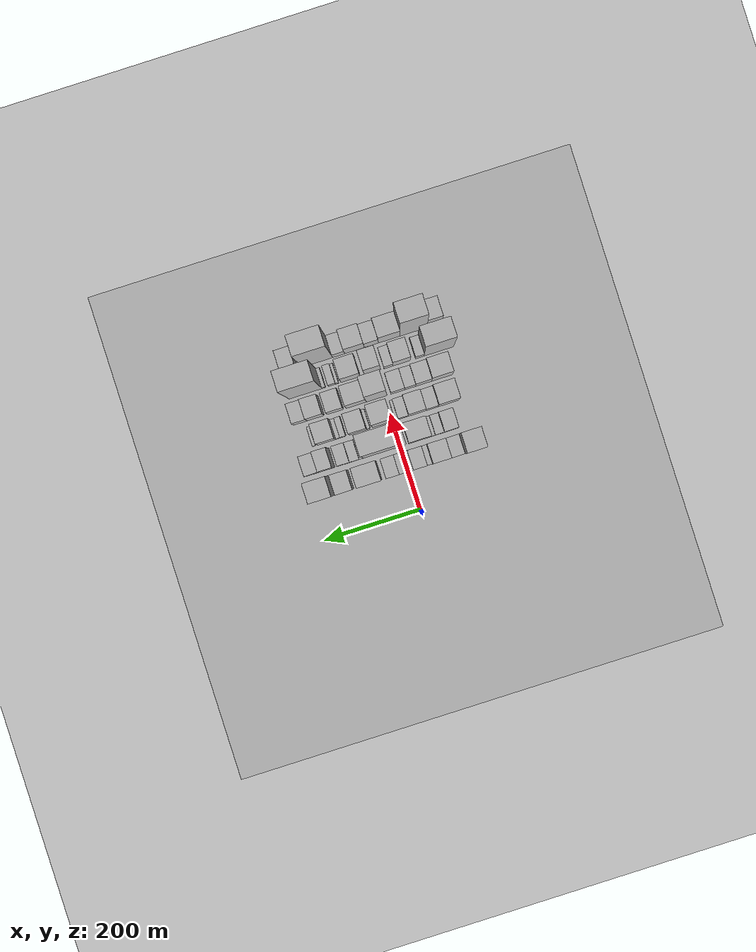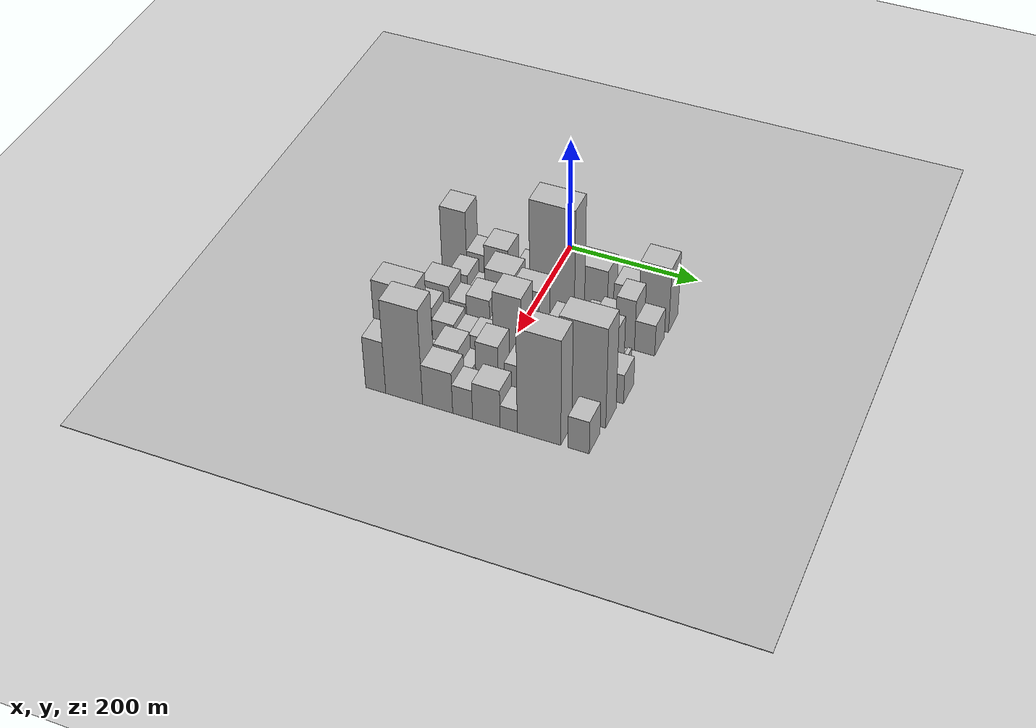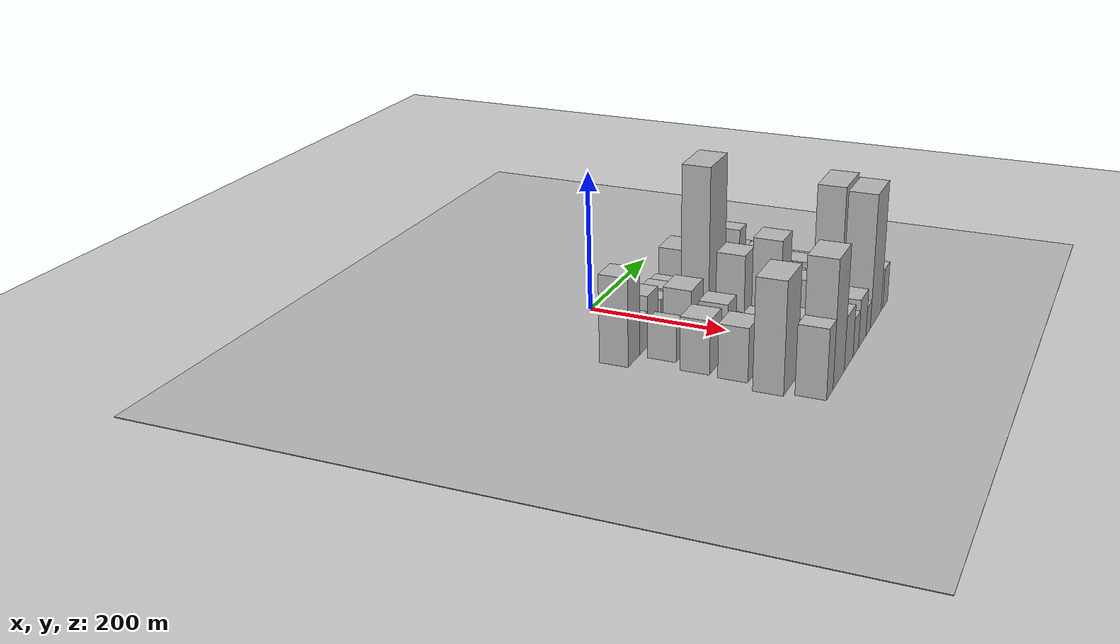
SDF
<sdf version="1.6">
 <world name="default">
  <include><name>ground_plane_1</name><uri>model://HANNAS_ground_plane</uri></include>
  <include>
   <name>ground_plane_2</name>
   <uri>model://HANNAS_ground_plane</uri>
   <pose>100 0 0  0 0 0</pose>
  </include>
  <model name="building_21">
   <static>1</static>
   <pose>100.0000 -134.0736 0 0.000000 0.000000 0.000000</pose>
   <link name="link">
    <pose>0 0 61.50 0 0 0</pose>
    <collision name="collision"><geometry><box><size>40.0000 39.9015 123.0000</size></box></geometry></collision>
    <visual name="visual">
     <cast_shadows>0</cast_shadows>
     <geometry><box><size>40.0000 39.9015 123.0000</size></box></geometry>
     <material>
      <script>
       <uri>model://HANNAS_wall/materials/scripts</uri>
       <uri>model://HANNAS_wall/materials/textures</uri>
       <name>vrc/HANNAS_wall</name>
      </script>
     </material>
    </visual>
   </link>
  </model>
  <model name="building_22">
   <static>1</static>
   <pose>100.0000 -100.3217 0 0.000000 0.000000 0.000000</pose>
   <link name="link">
    <pose>0 0 25.50 0 0 0</pose>
    <collision name="collision"><geometry><box><size>40.0000 27.6023 51.0000</size></box></geometry></collision>
    <visual name="visual">
     <cast_shadows>0</cast_shadows>
     <geometry><box><size>40.0000 27.6023 51.0000</size></box></geometry>
     <material>
      <script>
       <uri>model://HANNAS_wall/materials/scripts</uri>
       <uri>model://HANNAS_wall/materials/textures</uri>
       <name>vrc/HANNAS_wall</name>
      </script>
     </material>
    </visual>
   </link>
  </model>
  <model name="building_23">
   <static>1</static>
   <pose>100.0000 -67.7895 0 0.000000 0.000000 0.000000</pose>
   <link name="link">
    <pose>0 0 36.00 0 0 0</pose>
    <collision name="collision"><geometry><box><size>40.0000 37.4621 72.0000</size></box></geometry></collision>
    <visual name="visual">
     <cast_shadows>0</cast_shadows>
     <geometry><box><size>40.0000 37.4621 72.0000</size></box></geometry>
     <material>
      <script>
       <uri>model://HANNAS_wall/materials/scripts</uri>
       <uri>model://HANNAS_wall/materials/textures</uri>
       <name>vrc/HANNAS_wall</name>
      </script>
     </material>
    </visual>
   </link>
  </model>
  <model name="building_24">
   <static>1</static>
   <pose>100.0000 -43.5704 0 0.000000 0.000000 0.000000</pose>
   <link name="link">
    <pose>0 0 12.00 0 0 0</pose>
    <collision name="collision"><geometry><box><size>40.0000 10.9760 24.0000</size></box></geometry></collision>
    <visual name="visual">
     <cast_shadows>0</cast_shadows>
     <geometry><box><size>40.0000 10.9760 24.0000</size></box></geometry>
     <material>
      <script>
       <uri>model://HANNAS_wall/materials/scripts</uri>
       <uri>model://HANNAS_wall/materials/textures</uri>
       <name>vrc/HANNAS_wall</name>
      </script>
     </material>
    </visual>
   </link>
  </model>
  <model name="building_25">
   <static>1</static>
   <pose>100.0000 -23.7559 0 0.000000 0.000000 0.000000</pose>
   <link name="link">
    <pose>0 0 24.00 0 0 0</pose>
    <collision name="collision"><geometry><box><size>40.0000 28.6529 48.0000</size></box></geometry></collision>
    <visual name="visual">
     <cast_shadows>0</cast_shadows>
     <geometry><box><size>40.0000 28.6529 48.0000</size></box></geometry>
     <material>
      <script>
       <uri>model://HANNAS_wall/materials/scripts</uri>
       <uri>model://HANNAS_wall/materials/textures</uri>
       <name>vrc/HANNAS_wall</name>
      </script>
     </material>
    </visual>
   </link>
  </model>
  <model name="building_26">
   <static>1</static>
   <pose>100.0000 4.6987 0 0.000000 0.000000 0.000000</pose>
   <link name="link">
    <pose>0 0 25.50 0 0 0</pose>
    <collision name="collision"><geometry><box><size>40.0000 28.2563 51.0000</size></box></geometry></collision>
    <visual name="visual">
     <cast_shadows>0</cast_shadows>
     <geometry><box><size>40.0000 28.2563 51.0000</size></box></geometry>
     <material>
      <script>
       <uri>model://HANNAS_wall/materials/scripts</uri>
       <uri>model://HANNAS_wall/materials/textures</uri>
       <name>vrc/HANNAS_wall</name>
      </script>
     </material>
    </visual>
   </link>
  </model>
  <model name="building_27">
   <static>1</static>
   <pose>100.0000 32.3830 0 0.000000 0.000000 0.000000</pose>
   <link name="link">
    <pose>0 0 24.00 0 0 0</pose>
    <collision name="collision"><geometry><box><size>40.0000 27.1123 48.0000</size></box></geometry></collision>
    <visual name="visual">
     <cast_shadows>0</cast_shadows>
     <geometry><box><size>40.0000 27.1123 48.0000</size></box></geometry>
     <material>
      <script>
       <uri>model://HANNAS_wall/materials/scripts</uri>
       <uri>model://HANNAS_wall/materials/textures</uri>
       <name>vrc/HANNAS_wall</name>
      </script>
     </material>
    </visual>
   </link>
  </model>
  <model name="building_28">
   <static>1</static>
   <pose>100.0000 79.7032 0 0.000000 0.000000 0.000000</pose>
   <link name="link">
    <pose>0 0 42.00 0 0 0</pose>
    <collision name="collision"><geometry><box><size>40.0000 49.5280 84.0000</size></box></geometry></collision>
    <visual name="visual">
     <cast_shadows>0</cast_shadows>
     <geometry><box><size>40.0000 49.5280 84.0000</size></box></geometry>
     <material>
      <script>
       <uri>model://HANNAS_wall/materials/scripts</uri>
       <uri>model://HANNAS_wall/materials/textures</uri>
       <name>vrc/HANNAS_wall</name>
      </script>
     </material>
    </visual>
   </link>
  </model>
  <model name="building_29">
   <static>1</static>
   <pose>100.0000 131.0560 0 0.000000 0.000000 0.000000</pose>
   <link name="link">
    <pose>0 0 33.00 0 0 0</pose>
    <collision name="collision"><geometry><box><size>40.0000 35.1776 66.0000</size></box></geometry></collision>
    <visual name="visual">
     <cast_shadows>0</cast_shadows>
     <geometry><box><size>40.0000 35.1776 66.0000</size></box></geometry>
     <material>
      <script>
       <uri>model://HANNAS_wall/materials/scripts</uri>
       <uri>model://HANNAS_wall/materials/textures</uri>
       <name>vrc/HANNAS_wall</name>
      </script>
     </material>
    </visual>
   </link>
  </model>
  <model name="building_30">
   <static>1</static>
   <pose>100.0000 174.4032 0 0.000000 0.000000 0.000000</pose>
   <link name="link">
    <pose>0 0 60.00 0 0 0</pose>
    <collision name="collision"><geometry><box><size>40.0000 45.5167 120.0000</size></box></geometry></collision>
    <visual name="visual">
     <cast_shadows>0</cast_shadows>
     <geometry><box><size>40.0000 45.5167 120.0000</size></box></geometry>
     <material>
      <script>
       <uri>model://HANNAS_wall/materials/scripts</uri>
       <uri>model://HANNAS_wall/materials/textures</uri>
       <name>vrc/HANNAS_wall</name>
      </script>
     </material>
    </visual>
   </link>
  </model>
  <model name="building_68">
   <static>1</static>
   <pose>152.0000 -103.8180 0 0.000000 0.000000 0.000000</pose>
   <link name="link">
    <pose>0 0 27.00 0 0 0</pose>
    <collision name="collision"><geometry><box><size>40.0000 28.8253 54.0000</size></box></geometry></collision>
    <visual name="visual">
     <cast_shadows>0</cast_shadows>
     <geometry><box><size>40.0000 28.8253 54.0000</size></box></geometry>
     <material>
      <script>
       <uri>model://HANNAS_wall/materials/scripts</uri>
       <uri>model://HANNAS_wall/materials/textures</uri>
       <name>vrc/HANNAS_wall</name>
      </script>
     </material>
    </visual>
   </link>
  </model>
  <model name="building_69">
   <static>1</static>
   <pose>152.0000 -80.4227 0 0.000000 0.000000 0.000000</pose>
   <link name="link">
    <pose>0 0 15.00 0 0 0</pose>
    <collision name="collision"><geometry><box><size>40.0000 17.9654 30.0000</size></box></geometry></collision>
    <visual name="visual">
     <cast_shadows>0</cast_shadows>
     <geometry><box><size>40.0000 17.9654 30.0000</size></box></geometry>
     <material>
      <script>
       <uri>model://HANNAS_wall/materials/scripts</uri>
       <uri>model://HANNAS_wall/materials/textures</uri>
       <name>vrc/HANNAS_wall</name>
      </script>
     </material>
    </visual>
   </link>
  </model>
  <model name="building_70">
   <static>1</static>
   <pose>152.0000 -67.0035 0 0.000000 0.000000 0.000000</pose>
   <link name="link">
    <pose>0 0 9.00 0 0 0</pose>
    <collision name="collision"><geometry><box><size>40.0000 8.8729 18.0000</size></box></geometry></collision>
    <visual name="visual">
     <cast_shadows>0</cast_shadows>
     <geometry><box><size>40.0000 8.8729 18.0000</size></box></geometry>
     <material>
      <script>
       <uri>model://HANNAS_wall/materials/scripts</uri>
       <uri>model://HANNAS_wall/materials/textures</uri>
       <name>vrc/HANNAS_wall</name>
      </script>
     </material>
    </visual>
   </link>
  </model>
  <model name="building_71">
   <static>1</static>
   <pose>152.0000 -39.5892 0 0.000000 0.000000 0.000000</pose>
   <link name="link">
    <pose>0 0 39.00 0 0 0</pose>
    <collision name="collision"><geometry><box><size>40.0000 45.9557 78.0000</size></box></geometry></collision>
    <visual name="visual">
     <cast_shadows>0</cast_shadows>
     <geometry><box><size>40.0000 45.9557 78.0000</size></box></geometry>
     <material>
      <script>
       <uri>model://HANNAS_wall/materials/scripts</uri>
       <uri>model://HANNAS_wall/materials/textures</uri>
       <name>vrc/HANNAS_wall</name>
      </script>
     </material>
    </visual>
   </link>
  </model>
  <model name="building_72">
   <static>1</static>
   <pose>152.0000 -7.1636 0 0.000000 0.000000 0.000000</pose>
   <link name="link">
    <pose>0 0 9.00 0 0 0</pose>
    <collision name="collision"><geometry><box><size>40.0000 8.8955 18.0000</size></box></geometry></collision>
    <visual name="visual">
     <cast_shadows>0</cast_shadows>
     <geometry><box><size>40.0000 8.8955 18.0000</size></box></geometry>
     <material>
      <script>
       <uri>model://HANNAS_wall/materials/scripts</uri>
       <uri>model://HANNAS_wall/materials/textures</uri>
       <name>vrc/HANNAS_wall</name>
      </script>
     </material>
    </visual>
   </link>
  </model>
  <model name="building_73">
   <static>1</static>
   <pose>152.0000 40.2051 0 0.000000 0.000000 0.000000</pose>
   <link name="link">
    <pose>0 0 112.50 0 0 0</pose>
    <collision name="collision"><geometry><box><size>40.0000 67.8419 225.0000</size></box></geometry></collision>
    <visual name="visual">
     <cast_shadows>0</cast_shadows>
     <geometry><box><size>40.0000 67.8419 225.0000</size></box></geometry>
     <material>
      <script>
       <uri>model://HANNAS_wall/materials/scripts</uri>
       <uri>model://HANNAS_wall/materials/textures</uri>
       <name>vrc/HANNAS_wall</name>
      </script>
     </material>
    </visual>
   </link>
  </model>
  <model name="building_74">
   <static>1</static>
   <pose>152.0000 79.5233 0 0.000000 0.000000 0.000000</pose>
   <link name="link">
    <pose>0 0 12.00 0 0 0</pose>
    <collision name="collision"><geometry><box><size>40.0000 10.7944 24.0000</size></box></geometry></collision>
    <visual name="visual">
     <cast_shadows>0</cast_shadows>
     <geometry><box><size>40.0000 10.7944 24.0000</size></box></geometry>
     <material>
      <script>
       <uri>model://HANNAS_wall/materials/scripts</uri>
       <uri>model://HANNAS_wall/materials/textures</uri>
       <name>vrc/HANNAS_wall</name>
      </script>
     </material>
    </visual>
   </link>
  </model>
  <model name="building_75">
   <static>1</static>
   <pose>152.0000 94.5203 0 0.000000 0.000000 0.000000</pose>
   <link name="link">
    <pose>0 0 18.00 0 0 0</pose>
    <collision name="collision"><geometry><box><size>40.0000 19.1995 36.0000</size></box></geometry></collision>
    <visual name="visual">
     <cast_shadows>0</cast_shadows>
     <geometry><box><size>40.0000 19.1995 36.0000</size></box></geometry>
     <material>
      <script>
       <uri>model://HANNAS_wall/materials/scripts</uri>
       <uri>model://HANNAS_wall/materials/textures</uri>
       <name>vrc/HANNAS_wall</name>
      </script>
     </material>
    </visual>
   </link>
  </model>
  <model name="building_76">
   <static>1</static>
   <pose>152.0000 116.7241 0 0.000000 0.000000 0.000000</pose>
   <link name="link">
    <pose>0 0 24.00 0 0 0</pose>
    <collision name="collision"><geometry><box><size>40.0000 25.2081 48.0000</size></box></geometry></collision>
    <visual name="visual">
     <cast_shadows>0</cast_shadows>
     <geometry><box><size>40.0000 25.2081 48.0000</size></box></geometry>
     <material>
      <script>
       <uri>model://HANNAS_wall/materials/scripts</uri>
       <uri>model://HANNAS_wall/materials/textures</uri>
       <name>vrc/HANNAS_wall</name>
      </script>
     </material>
    </visual>
   </link>
  </model>
  <model name="building_77">
   <static>1</static>
   <pose>152.0000 150.6481 0 0.000000 0.000000 0.000000</pose>
   <link name="link">
    <pose>0 0 46.50 0 0 0</pose>
    <collision name="collision"><geometry><box><size>40.0000 28.6399 93.0000</size></box></geometry></collision>
    <visual name="visual">
     <cast_shadows>0</cast_shadows>
     <geometry><box><size>40.0000 28.6399 93.0000</size></box></geometry>
     <material>
      <script>
       <uri>model://HANNAS_wall/materials/scripts</uri>
       <uri>model://HANNAS_wall/materials/textures</uri>
       <name>vrc/HANNAS_wall</name>
      </script>
     </material>
    </visual>
   </link>
  </model>
  <model name="building_78">
   <static>1</static>
   <pose>152.0000 180.0449 0 0.000000 0.000000 0.000000</pose>
   <link name="link">
    <pose>0 0 28.50 0 0 0</pose>
    <collision name="collision"><geometry><box><size>40.0000 30.1537 57.0000</size></box></geometry></collision>
    <visual name="visual">
     <cast_shadows>0</cast_shadows>
     <geometry><box><size>40.0000 30.1537 57.0000</size></box></geometry>
     <material>
      <script>
       <uri>model://HANNAS_wall/materials/scripts</uri>
       <uri>model://HANNAS_wall/materials/textures</uri>
       <name>vrc/HANNAS_wall</name>
      </script>
     </material>
    </visual>
   </link>
  </model>
  <model name="building_123">
   <static>1</static>
   <pose>204.0000 -115.6003 0 0.000000 0.000000 0.000000</pose>
   <link name="link">
    <pose>0 0 37.50 0 0 0</pose>
    <collision name="collision"><geometry><box><size>40.0000 43.0246 75.0000</size></box></geometry></collision>
    <visual name="visual">
     <cast_shadows>0</cast_shadows>
     <geometry><box><size>40.0000 43.0246 75.0000</size></box></geometry>
     <material>
      <script>
       <uri>model://HANNAS_wall/materials/scripts</uri>
       <uri>model://HANNAS_wall/materials/textures</uri>
       <name>vrc/HANNAS_wall</name>
      </script>
     </material>
    </visual>
   </link>
  </model>
  <model name="building_124">
   <static>1</static>
   <pose>204.0000 -81.1915 0 0.000000 0.000000 0.000000</pose>
   <link name="link">
    <pose>0 0 25.50 0 0 0</pose>
    <collision name="collision"><geometry><box><size>40.0000 25.7930 51.0000</size></box></geometry></collision>
    <visual name="visual">
     <cast_shadows>0</cast_shadows>
     <geometry><box><size>40.0000 25.7930 51.0000</size></box></geometry>
     <material>
      <script>
       <uri>model://HANNAS_wall/materials/scripts</uri>
       <uri>model://HANNAS_wall/materials/textures</uri>
       <name>vrc/HANNAS_wall</name>
      </script>
     </material>
    </visual>
   </link>
  </model>
  <model name="building_125">
   <static>1</static>
   <pose>204.0000 -50.4881 0 0.000000 0.000000 0.000000</pose>
   <link name="link">
    <pose>0 0 34.50 0 0 0</pose>
    <collision name="collision"><geometry><box><size>40.0000 35.6138 69.0000</size></box></geometry></collision>
    <visual name="visual">
     <cast_shadows>0</cast_shadows>
     <geometry><box><size>40.0000 35.6138 69.0000</size></box></geometry>
     <material>
      <script>
       <uri>model://HANNAS_wall/materials/scripts</uri>
       <uri>model://HANNAS_wall/materials/textures</uri>
       <name>vrc/HANNAS_wall</name>
      </script>
     </material>
    </visual>
   </link>
  </model>
  <model name="building_126">
   <static>1</static>
   <pose>204.0000 -22.0442 0 0.000000 0.000000 0.000000</pose>
   <link name="link">
    <pose>0 0 18.00 0 0 0</pose>
    <collision name="collision"><geometry><box><size>40.0000 21.2739 36.0000</size></box></geometry></collision>
    <visual name="visual">
     <cast_shadows>0</cast_shadows>
     <geometry><box><size>40.0000 21.2739 36.0000</size></box></geometry>
     <material>
      <script>
       <uri>model://HANNAS_wall/materials/scripts</uri>
       <uri>model://HANNAS_wall/materials/textures</uri>
       <name>vrc/HANNAS_wall</name>
      </script>
     </material>
    </visual>
   </link>
  </model>
  <model name="building_127">
   <static>1</static>
   <pose>204.0000 -8.3432 0 0.000000 0.000000 0.000000</pose>
   <link name="link">
    <pose>0 0 7.50 0 0 0</pose>
    <collision name="collision"><geometry><box><size>40.0000 6.1281 15.0000</size></box></geometry></collision>
    <visual name="visual">
     <cast_shadows>0</cast_shadows>
     <geometry><box><size>40.0000 6.1281 15.0000</size></box></geometry>
     <material>
      <script>
       <uri>model://HANNAS_wall/materials/scripts</uri>
       <uri>model://HANNAS_wall/materials/textures</uri>
       <name>vrc/HANNAS_wall</name>
      </script>
     </material>
    </visual>
   </link>
  </model>
  <model name="building_128">
   <static>1</static>
   <pose>204.0000 21.1085 0 0.000000 0.000000 0.000000</pose>
   <link name="link">
    <pose>0 0 55.50 0 0 0</pose>
    <collision name="collision"><geometry><box><size>40.0000 40.7753 111.0000</size></box></geometry></collision>
    <visual name="visual">
     <cast_shadows>0</cast_shadows>
     <geometry><box><size>40.0000 40.7753 111.0000</size></box></geometry>
     <material>
      <script>
       <uri>model://HANNAS_wall/materials/scripts</uri>
       <uri>model://HANNAS_wall/materials/textures</uri>
       <name>vrc/HANNAS_wall</name>
      </script>
     </material>
    </visual>
   </link>
  </model>
  <model name="building_129">
   <static>1</static>
   <pose>204.0000 49.8480 0 0.000000 0.000000 0.000000</pose>
   <link name="link">
    <pose>0 0 7.50 0 0 0</pose>
    <collision name="collision"><geometry><box><size>40.0000 6.7038 15.0000</size></box></geometry></collision>
    <visual name="visual">
     <cast_shadows>0</cast_shadows>
     <geometry><box><size>40.0000 6.7038 15.0000</size></box></geometry>
     <material>
      <script>
       <uri>model://HANNAS_wall/materials/scripts</uri>
       <uri>model://HANNAS_wall/materials/textures</uri>
       <name>vrc/HANNAS_wall</name>
      </script>
     </material>
    </visual>
   </link>
  </model>
  <model name="building_130">
   <static>1</static>
   <pose>204.0000 71.2294 0 0.000000 0.000000 0.000000</pose>
   <link name="link">
    <pose>0 0 33.00 0 0 0</pose>
    <collision name="collision"><geometry><box><size>40.0000 36.0588 66.0000</size></box></geometry></collision>
    <visual name="visual">
     <cast_shadows>0</cast_shadows>
     <geometry><box><size>40.0000 36.0588 66.0000</size></box></geometry>
     <material>
      <script>
       <uri>model://HANNAS_wall/materials/scripts</uri>
       <uri>model://HANNAS_wall/materials/textures</uri>
       <name>vrc/HANNAS_wall</name>
      </script>
     </material>
    </visual>
   </link>
  </model>
  <model name="building_131">
   <static>1</static>
   <pose>204.0000 102.2700 0 0.000000 0.000000 0.000000</pose>
   <link name="link">
    <pose>0 0 13.50 0 0 0</pose>
    <collision name="collision"><geometry><box><size>40.0000 12.0224 27.0000</size></box></geometry></collision>
    <visual name="visual">
     <cast_shadows>0</cast_shadows>
     <geometry><box><size>40.0000 12.0224 27.0000</size></box></geometry>
     <material>
      <script>
       <uri>model://HANNAS_wall/materials/scripts</uri>
       <uri>model://HANNAS_wall/materials/textures</uri>
       <name>vrc/HANNAS_wall</name>
      </script>
     </material>
    </visual>
   </link>
  </model>
  <model name="building_132">
   <static>1</static>
   <pose>204.0000 112.6534 0 0.000000 0.000000 0.000000</pose>
   <link name="link">
    <pose>0 0 9.00 0 0 0</pose>
    <collision name="collision"><geometry><box><size>40.0000 8.7445 18.0000</size></box></geometry></collision>
    <visual name="visual">
     <cast_shadows>0</cast_shadows>
     <geometry><box><size>40.0000 8.7445 18.0000</size></box></geometry>
     <material>
      <script>
       <uri>model://HANNAS_wall/materials/scripts</uri>
       <uri>model://HANNAS_wall/materials/textures</uri>
       <name>vrc/HANNAS_wall</name>
      </script>
     </material>
    </visual>
   </link>
  </model>
  <model name="building_133">
   <static>1</static>
   <pose>204.0000 135.7043 0 0.000000 0.000000 0.000000</pose>
   <link name="link">
    <pose>0 0 36.00 0 0 0</pose>
    <collision name="collision"><geometry><box><size>40.0000 37.3571 72.0000</size></box></geometry></collision>
    <visual name="visual">
     <cast_shadows>0</cast_shadows>
     <geometry><box><size>40.0000 37.3571 72.0000</size></box></geometry>
     <material>
      <script>
       <uri>model://HANNAS_wall/materials/scripts</uri>
       <uri>model://HANNAS_wall/materials/textures</uri>
       <name>vrc/HANNAS_wall</name>
      </script>
     </material>
    </visual>
   </link>
  </model>
  <model name="building_134">
   <static>1</static>
   <pose>204.0000 162.3906 0 0.000000 0.000000 0.000000</pose>
   <link name="link">
    <pose>0 0 7.50 0 0 0</pose>
    <collision name="collision"><geometry><box><size>40.0000 6.0155 15.0000</size></box></geometry></collision>
    <visual name="visual">
     <cast_shadows>0</cast_shadows>
     <geometry><box><size>40.0000 6.0155 15.0000</size></box></geometry>
     <material>
      <script>
       <uri>model://HANNAS_wall/materials/scripts</uri>
       <uri>model://HANNAS_wall/materials/textures</uri>
       <name>vrc/HANNAS_wall</name>
      </script>
     </material>
    </visual>
   </link>
  </model>
  <model name="building_178">
   <static>1</static>
   <pose>256.0000 -118.8434 0 0.000000 0.000000 0.000000</pose>
   <link name="link">
    <pose>0 0 37.50 0 0 0</pose>
    <collision name="collision"><geometry><box><size>40.0000 43.1728 75.0000</size></box></geometry></collision>
    <visual name="visual">
     <cast_shadows>0</cast_shadows>
     <geometry><box><size>40.0000 43.1728 75.0000</size></box></geometry>
     <material>
      <script>
       <uri>model://HANNAS_wall/materials/scripts</uri>
       <uri>model://HANNAS_wall/materials/textures</uri>
       <name>vrc/HANNAS_wall</name>
      </script>
     </material>
    </visual>
   </link>
  </model>
  <model name="building_179">
   <static>1</static>
   <pose>256.0000 -80.7483 0 0.000000 0.000000 0.000000</pose>
   <link name="link">
    <pose>0 0 28.50 0 0 0</pose>
    <collision name="collision"><geometry><box><size>40.0000 33.0173 57.0000</size></box></geometry></collision>
    <visual name="visual">
     <cast_shadows>0</cast_shadows>
     <geometry><box><size>40.0000 33.0173 57.0000</size></box></geometry>
     <material>
      <script>
       <uri>model://HANNAS_wall/materials/scripts</uri>
       <uri>model://HANNAS_wall/materials/textures</uri>
       <name>vrc/HANNAS_wall</name>
      </script>
     </material>
    </visual>
   </link>
  </model>
  <model name="building_180">
   <static>1</static>
   <pose>256.0000 -52.8998 0 0.000000 0.000000 0.000000</pose>
   <link name="link">
    <pose>0 0 22.50 0 0 0</pose>
    <collision name="collision"><geometry><box><size>40.0000 22.6796 45.0000</size></box></geometry></collision>
    <visual name="visual">
     <cast_shadows>0</cast_shadows>
     <geometry><box><size>40.0000 22.6796 45.0000</size></box></geometry>
     <material>
      <script>
       <uri>model://HANNAS_wall/materials/scripts</uri>
       <uri>model://HANNAS_wall/materials/textures</uri>
       <name>vrc/HANNAS_wall</name>
      </script>
     </material>
    </visual>
   </link>
  </model>
  <model name="building_181">
   <static>1</static>
   <pose>256.0000 -27.2758 0 0.000000 0.000000 0.000000</pose>
   <link name="link">
    <pose>0 0 24.00 0 0 0</pose>
    <collision name="collision"><geometry><box><size>40.0000 28.5685 48.0000</size></box></geometry></collision>
    <visual name="visual">
     <cast_shadows>0</cast_shadows>
     <geometry><box><size>40.0000 28.5685 48.0000</size></box></geometry>
     <material>
      <script>
       <uri>model://HANNAS_wall/materials/scripts</uri>
       <uri>model://HANNAS_wall/materials/textures</uri>
       <name>vrc/HANNAS_wall</name>
      </script>
     </material>
    </visual>
   </link>
  </model>
  <model name="building_182">
   <static>1</static>
   <pose>256.0000 16.2235 0 0.000000 0.000000 0.000000</pose>
   <link name="link">
    <pose>0 0 70.50 0 0 0</pose>
    <collision name="collision"><geometry><box><size>40.0000 42.4301 141.0000</size></box></geometry></collision>
    <visual name="visual">
     <cast_shadows>0</cast_shadows>
     <geometry><box><size>40.0000 42.4301 141.0000</size></box></geometry>
     <material>
      <script>
       <uri>model://HANNAS_wall/materials/scripts</uri>
       <uri>model://HANNAS_wall/materials/textures</uri>
       <name>vrc/HANNAS_wall</name>
      </script>
     </material>
    </visual>
   </link>
  </model>
  <model name="building_183">
   <static>1</static>
   <pose>256.0000 58.1832 0 0.000000 0.000000 0.000000</pose>
   <link name="link">
    <pose>0 0 37.50 0 0 0</pose>
    <collision name="collision"><geometry><box><size>40.0000 41.4893 75.0000</size></box></geometry></collision>
    <visual name="visual">
     <cast_shadows>0</cast_shadows>
     <geometry><box><size>40.0000 41.4893 75.0000</size></box></geometry>
     <material>
      <script>
       <uri>model://HANNAS_wall/materials/scripts</uri>
       <uri>model://HANNAS_wall/materials/textures</uri>
       <name>vrc/HANNAS_wall</name>
      </script>
     </material>
    </visual>
   </link>
  </model>
  <model name="building_184">
   <static>1</static>
   <pose>256.0000 101.5526 0 0.000000 0.000000 0.000000</pose>
   <link name="link">
    <pose>0 0 28.50 0 0 0</pose>
    <collision name="collision"><geometry><box><size>40.0000 33.2495 57.0000</size></box></geometry></collision>
    <visual name="visual">
     <cast_shadows>0</cast_shadows>
     <geometry><box><size>40.0000 33.2495 57.0000</size></box></geometry>
     <material>
      <script>
       <uri>model://HANNAS_wall/materials/scripts</uri>
       <uri>model://HANNAS_wall/materials/textures</uri>
       <name>vrc/HANNAS_wall</name>
      </script>
     </material>
    </visual>
   </link>
  </model>
  <model name="building_185">
   <static>1</static>
   <pose>256.0000 142.5077 0 0.000000 0.000000 0.000000</pose>
   <link name="link">
    <pose>0 0 31.50 0 0 0</pose>
    <collision name="collision"><geometry><box><size>40.0000 34.6606 63.0000</size></box></geometry></collision>
    <visual name="visual">
     <cast_shadows>0</cast_shadows>
     <geometry><box><size>40.0000 34.6606 63.0000</size></box></geometry>
     <material>
      <script>
       <uri>model://HANNAS_wall/materials/scripts</uri>
       <uri>model://HANNAS_wall/materials/textures</uri>
       <name>vrc/HANNAS_wall</name>
      </script>
     </material>
    </visual>
   </link>
  </model>
  <model name="building_186">
   <static>1</static>
   <pose>256.0000 173.6826 0 0.000000 0.000000 0.000000</pose>
   <link name="link">
    <pose>0 0 27.00 0 0 0</pose>
    <collision name="collision"><geometry><box><size>40.0000 27.6891 54.0000</size></box></geometry></collision>
    <visual name="visual">
     <cast_shadows>0</cast_shadows>
     <geometry><box><size>40.0000 27.6891 54.0000</size></box></geometry>
     <material>
      <script>
       <uri>model://HANNAS_wall/materials/scripts</uri>
       <uri>model://HANNAS_wall/materials/textures</uri>
       <name>vrc/HANNAS_wall</name>
      </script>
     </material>
    </visual>
   </link>
  </model>
  <model name="building_230">
   <static>1</static>
   <pose>308.0000 -128.8829 0 0.000000 0.000000 0.000000</pose>
   <link name="link">
    <pose>0 0 76.50 0 0 0</pose>
    <collision name="collision"><geometry><box><size>40.0000 60.7811 153.0000</size></box></geometry></collision>
    <visual name="visual">
     <cast_shadows>0</cast_shadows>
     <geometry><box><size>40.0000 60.7811 153.0000</size></box></geometry>
     <material>
      <script>
       <uri>model://HANNAS_wall/materials/scripts</uri>
       <uri>model://HANNAS_wall/materials/textures</uri>
       <name>vrc/HANNAS_wall</name>
      </script>
     </material>
    </visual>
   </link>
  </model>
  <model name="building_231">
   <static>1</static>
   <pose>308.0000 -89.4903 0 0.000000 0.000000 0.000000</pose>
   <link name="link">
    <pose>0 0 16.50 0 0 0</pose>
    <collision name="collision"><geometry><box><size>40.0000 18.0042 33.0000</size></box></geometry></collision>
    <visual name="visual">
     <cast_shadows>0</cast_shadows>
     <geometry><box><size>40.0000 18.0042 33.0000</size></box></geometry>
     <material>
      <script>
       <uri>model://HANNAS_wall/materials/scripts</uri>
       <uri>model://HANNAS_wall/materials/textures</uri>
       <name>vrc/HANNAS_wall</name>
      </script>
     </material>
    </visual>
   </link>
  </model>
  <model name="building_232">
   <static>1</static>
   <pose>308.0000 -52.3119 0 0.000000 0.000000 0.000000</pose>
   <link name="link">
    <pose>0 0 33.00 0 0 0</pose>
    <collision name="collision"><geometry><box><size>40.0000 36.3524 66.0000</size></box></geometry></collision>
    <visual name="visual">
     <cast_shadows>0</cast_shadows>
     <geometry><box><size>40.0000 36.3524 66.0000</size></box></geometry>
     <material>
      <script>
       <uri>model://HANNAS_wall/materials/scripts</uri>
       <uri>model://HANNAS_wall/materials/textures</uri>
       <name>vrc/HANNAS_wall</name>
      </script>
     </material>
    </visual>
   </link>
  </model>
  <model name="building_233">
   <static>1</static>
   <pose>308.0000 -24.7293 0 0.000000 0.000000 0.000000</pose>
   <link name="link">
    <pose>0 0 18.00 0 0 0</pose>
    <collision name="collision"><geometry><box><size>40.0000 18.8129 36.0000</size></box></geometry></collision>
    <visual name="visual">
     <cast_shadows>0</cast_shadows>
     <geometry><box><size>40.0000 18.8129 36.0000</size></box></geometry>
     <material>
      <script>
       <uri>model://HANNAS_wall/materials/scripts</uri>
       <uri>model://HANNAS_wall/materials/textures</uri>
       <name>vrc/HANNAS_wall</name>
      </script>
     </material>
    </visual>
   </link>
  </model>
  <model name="building_234">
   <static>1</static>
   <pose>308.0000 8.2443 0 0.000000 0.000000 0.000000</pose>
   <link name="link">
    <pose>0 0 46.50 0 0 0</pose>
    <collision name="collision"><geometry><box><size>40.0000 33.1341 93.0000</size></box></geometry></collision>
    <visual name="visual">
     <cast_shadows>0</cast_shadows>
     <geometry><box><size>40.0000 33.1341 93.0000</size></box></geometry>
     <material>
      <script>
       <uri>model://HANNAS_wall/materials/scripts</uri>
       <uri>model://HANNAS_wall/materials/textures</uri>
       <name>vrc/HANNAS_wall</name>
      </script>
     </material>
    </visual>
   </link>
  </model>
  <model name="building_235">
   <static>1</static>
   <pose>308.0000 53.6199 0 0.000000 0.000000 0.000000</pose>
   <link name="link">
    <pose>0 0 34.50 0 0 0</pose>
    <collision name="collision"><geometry><box><size>40.0000 39.6173 69.0000</size></box></geometry></collision>
    <visual name="visual">
     <cast_shadows>0</cast_shadows>
     <geometry><box><size>40.0000 39.6173 69.0000</size></box></geometry>
     <material>
      <script>
       <uri>model://HANNAS_wall/materials/scripts</uri>
       <uri>model://HANNAS_wall/materials/textures</uri>
       <name>vrc/HANNAS_wall</name>
      </script>
     </material>
    </visual>
   </link>
  </model>
  <model name="building_236">
   <static>1</static>
   <pose>308.0000 81.5007 0 0.000000 0.000000 0.000000</pose>
   <link name="link">
    <pose>0 0 7.50 0 0 0</pose>
    <collision name="collision"><geometry><box><size>40.0000 6.1443 15.0000</size></box></geometry></collision>
    <visual name="visual">
     <cast_shadows>0</cast_shadows>
     <geometry><box><size>40.0000 6.1443 15.0000</size></box></geometry>
     <material>
      <script>
       <uri>model://HANNAS_wall/materials/scripts</uri>
       <uri>model://HANNAS_wall/materials/textures</uri>
       <name>vrc/HANNAS_wall</name>
      </script>
     </material>
    </visual>
   </link>
  </model>
  <model name="building_237">
   <static>1</static>
   <pose>308.0000 92.0863 0 0.000000 0.000000 0.000000</pose>
   <link name="link">
    <pose>0 0 15.00 0 0 0</pose>
    <collision name="collision"><geometry><box><size>40.0000 15.0268 30.0000</size></box></geometry></collision>
    <visual name="visual">
     <cast_shadows>0</cast_shadows>
     <geometry><box><size>40.0000 15.0268 30.0000</size></box></geometry>
     <material>
      <script>
       <uri>model://HANNAS_wall/materials/scripts</uri>
       <uri>model://HANNAS_wall/materials/textures</uri>
       <name>vrc/HANNAS_wall</name>
      </script>
     </material>
    </visual>
   </link>
  </model>
  <model name="building_238">
   <static>1</static>
   <pose>308.0000 109.2174 0 0.000000 0.000000 0.000000</pose>
   <link name="link">
    <pose>0 0 9.00 0 0 0</pose>
    <collision name="collision"><geometry><box><size>40.0000 7.2355 18.0000</size></box></geometry></collision>
    <visual name="visual">
     <cast_shadows>0</cast_shadows>
     <geometry><box><size>40.0000 7.2355 18.0000</size></box></geometry>
     <material>
      <script>
       <uri>model://HANNAS_wall/materials/scripts</uri>
       <uri>model://HANNAS_wall/materials/textures</uri>
       <name>vrc/HANNAS_wall</name>
      </script>
     </material>
    </visual>
   </link>
  </model>
  <model name="building_239">
   <static>1</static>
   <pose>308.0000 147.0369 0 0.000000 0.000000 0.000000</pose>
   <link name="link">
    <pose>0 0 91.50 0 0 0</pose>
    <collision name="collision"><geometry><box><size>40.0000 68.4035 183.0000</size></box></geometry></collision>
    <visual name="visual">
     <cast_shadows>0</cast_shadows>
     <geometry><box><size>40.0000 68.4035 183.0000</size></box></geometry>
     <material>
      <script>
       <uri>model://HANNAS_wall/materials/scripts</uri>
       <uri>model://HANNAS_wall/materials/textures</uri>
       <name>vrc/HANNAS_wall</name>
      </script>
     </material>
    </visual>
   </link>
  </model>
  <model name="building_276">
   <static>1</static>
   <pose>360.0000 -136.0395 0 0.000000 0.000000 0.000000</pose>
   <link name="link">
    <pose>0 0 48.00 0 0 0</pose>
    <collision name="collision"><geometry><box><size>40.0000 30.3875 96.0000</size></box></geometry></collision>
    <visual name="visual">
     <cast_shadows>0</cast_shadows>
     <geometry><box><size>40.0000 30.3875 96.0000</size></box></geometry>
     <material>
      <script>
       <uri>model://HANNAS_wall/materials/scripts</uri>
       <uri>model://HANNAS_wall/materials/textures</uri>
       <name>vrc/HANNAS_wall</name>
      </script>
     </material>
    </visual>
   </link>
  </model>
  <model name="building_277">
   <static>1</static>
   <pose>360.0000 -93.0967 0 0.000000 0.000000 0.000000</pose>
   <link name="link">
    <pose>0 0 87.00 0 0 0</pose>
    <collision name="collision"><geometry><box><size>40.0000 55.4980 174.0000</size></box></geometry></collision>
    <visual name="visual">
     <cast_shadows>0</cast_shadows>
     <geometry><box><size>40.0000 55.4980 174.0000</size></box></geometry>
     <material>
      <script>
       <uri>model://HANNAS_wall/materials/scripts</uri>
       <uri>model://HANNAS_wall/materials/textures</uri>
       <name>vrc/HANNAS_wall</name>
      </script>
     </material>
    </visual>
   </link>
  </model>
  <model name="building_278">
   <static>1</static>
   <pose>360.0000 -42.9231 0 0.000000 0.000000 0.000000</pose>
   <link name="link">
    <pose>0 0 37.50 0 0 0</pose>
    <collision name="collision"><geometry><box><size>40.0000 44.8491 75.0000</size></box></geometry></collision>
    <visual name="visual">
     <cast_shadows>0</cast_shadows>
     <geometry><box><size>40.0000 44.8491 75.0000</size></box></geometry>
     <material>
      <script>
       <uri>model://HANNAS_wall/materials/scripts</uri>
       <uri>model://HANNAS_wall/materials/textures</uri>
       <name>vrc/HANNAS_wall</name>
      </script>
     </material>
    </visual>
   </link>
  </model>
  <model name="building_279">
   <static>1</static>
   <pose>360.0000 -5.8087 0 0.000000 0.000000 0.000000</pose>
   <link name="link">
    <pose>0 0 27.00 0 0 0</pose>
    <collision name="collision"><geometry><box><size>40.0000 29.3797 54.0000</size></box></geometry></collision>
    <visual name="visual">
     <cast_shadows>0</cast_shadows>
     <geometry><box><size>40.0000 29.3797 54.0000</size></box></geometry>
     <material>
      <script>
       <uri>model://HANNAS_wall/materials/scripts</uri>
       <uri>model://HANNAS_wall/materials/textures</uri>
       <name>vrc/HANNAS_wall</name>
      </script>
     </material>
    </visual>
   </link>
  </model>
  <model name="building_280">
   <static>1</static>
   <pose>360.0000 29.1734 0 0.000000 0.000000 0.000000</pose>
   <link name="link">
    <pose>0 0 34.50 0 0 0</pose>
    <collision name="collision"><geometry><box><size>40.0000 40.5847 69.0000</size></box></geometry></collision>
    <visual name="visual">
     <cast_shadows>0</cast_shadows>
     <geometry><box><size>40.0000 40.5847 69.0000</size></box></geometry>
     <material>
      <script>
       <uri>model://HANNAS_wall/materials/scripts</uri>
       <uri>model://HANNAS_wall/materials/textures</uri>
       <name>vrc/HANNAS_wall</name>
      </script>
     </material>
    </visual>
   </link>
  </model>
  <model name="building_281">
   <static>1</static>
   <pose>360.0000 61.8831 0 0.000000 0.000000 0.000000</pose>
   <link name="link">
    <pose>0 0 21.00 0 0 0</pose>
    <collision name="collision"><geometry><box><size>40.0000 24.8347 42.0000</size></box></geometry></collision>
    <visual name="visual">
     <cast_shadows>0</cast_shadows>
     <geometry><box><size>40.0000 24.8347 42.0000</size></box></geometry>
     <material>
      <script>
       <uri>model://HANNAS_wall/materials/scripts</uri>
       <uri>model://HANNAS_wall/materials/textures</uri>
       <name>vrc/HANNAS_wall</name>
      </script>
     </material>
    </visual>
   </link>
  </model>
  <model name="building_282">
   <static>1</static>
   <pose>360.0000 105.7253 0 0.000000 0.000000 0.000000</pose>
   <link name="link">
    <pose>0 0 96.00 0 0 0</pose>
    <collision name="collision"><geometry><box><size>40.0000 62.8495 192.0000</size></box></geometry></collision>
    <visual name="visual">
     <cast_shadows>0</cast_shadows>
     <geometry><box><size>40.0000 62.8495 192.0000</size></box></geometry>
     <material>
      <script>
       <uri>model://HANNAS_wall/materials/scripts</uri>
       <uri>model://HANNAS_wall/materials/textures</uri>
       <name>vrc/HANNAS_wall</name>
      </script>
     </material>
    </visual>
   </link>
  </model>
  <model name="building_283">
   <static>1</static>
   <pose>360.0000 162.4381 0 0.000000 0.000000 0.000000</pose>
   <link name="link">
    <pose>0 0 30.00 0 0 0</pose>
    <collision name="collision"><geometry><box><size>40.0000 30.5761 60.0000</size></box></geometry></collision>
    <visual name="visual">
     <cast_shadows>0</cast_shadows>
     <geometry><box><size>40.0000 30.5761 60.0000</size></box></geometry>
     <material>
      <script>
       <uri>model://HANNAS_wall/materials/scripts</uri>
       <uri>model://HANNAS_wall/materials/textures</uri>
       <name>vrc/HANNAS_wall</name>
      </script>
     </material>
    </visual>
   </link>
  </model>
 </world>
</sdf>
